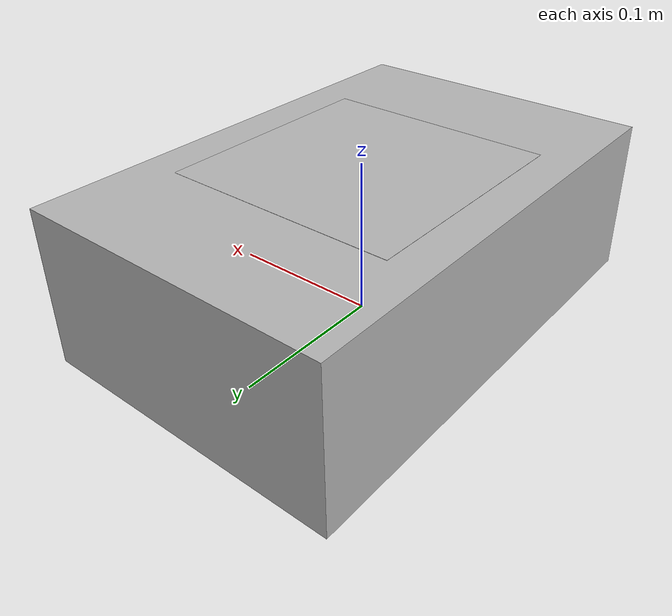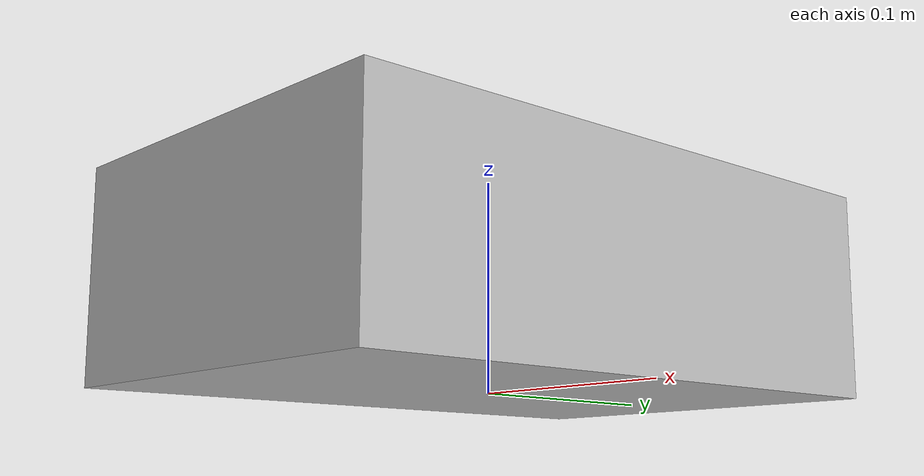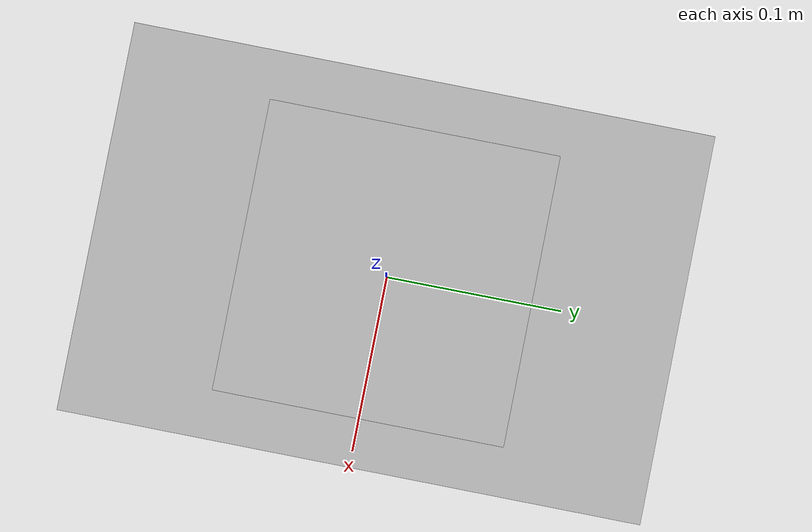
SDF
<?xml version="1.0" ?>
<!-- |    This document was autogenerated by xacro from model.sdf.xacro                | -->
<!-- |    EDITING THIS FILE BY HAND IS NOT RECOMMENDED                                 | -->
<sdf version="1.6">
  <model name="aruco_box">
    <link name="box">
      <pose>0 0 0.05 0 0 0</pose>
      <inertial>
        <mass>0.5</mass>
        <inertia>
          <ixx>7.500000000000001e-05</ixx>
          <ixy>0.0</ixy>
          <ixz>0.0</ixz>
          <iyy>3.333333333333335e-05</iyy>
          <iyz>0.0</iyz>
          <izz>0.00030000000000000003</izz>
        </inertia>
      </inertial>
      <visual name="box_visual">
        <pose>0 0 0 0 0 0</pose>
        <geometry>
          <box>
            <size>0.2 0.3 0.1</size>
          </box>
        </geometry>
      </visual>
      <collision name="box_collision">
        <pose>0 0 0 0 0 0</pose>
        <geometry>
          <box>
            <size>0.2 0.3 0.1</size>
          </box>
        </geometry>
        <surface>
          <contact>
            <ode>
              <kp>1e4</kp>
              <kd>1.0</kd>
            </ode>
          </contact>
        </surface>
      </collision>
    </link>
    <link name="marker">
      <pose>0 0 0.1 0 -1.57 0</pose>
      <inertial>
        <pose>0 0 0 0 0 0</pose>
        <mass>0.001</mass>
        <inertia>
          <ixx>3.7499999999999997e-06</ixx>
          <ixy>0.0</ixy>
          <ixz>0.0</ixz>
          <iyy>1.8750008333333333e-06</iyy>
          <iyz>0.0</iyz>
          <izz>1.8750008333333333e-06</izz>
        </inertia>
      </inertial>
      <visual name="front_visual">
        <pose>0.00005 0 0 0 0 0</pose>
        <geometry>
          <box>
            <size>0.0001 0.15 0.15</size>
          </box>
        </geometry>
        <material>
          <script>
            <uri>model://aruco_marker/materials/scripts</uri>
            <uri>model://aruco_marker/materials/textures</uri>
            <name>Marker</name>
          </script>
        </material>
      </visual>
      <!-- Hide the marker from the back -->
      <visual name="rear_visual">
        <pose>-0.00005 0 0 0 0 0</pose>
        <geometry>
          <box>
            <size>0.0001 0.15 0.15</size>
          </box>
        </geometry>
      </visual>
      <collision name="collision">
        <pose>0 0 0 0 0 0</pose>
        <geometry>
          <box>
            <size>0.0001 0.15 0.15</size>
          </box>
        </geometry>
      </collision>
    </link>
    <joint name="box_to_marker" type="fixed">
      <parent>box</parent>
      <child>marker</child>
    </joint>
  </model>
</sdf>
